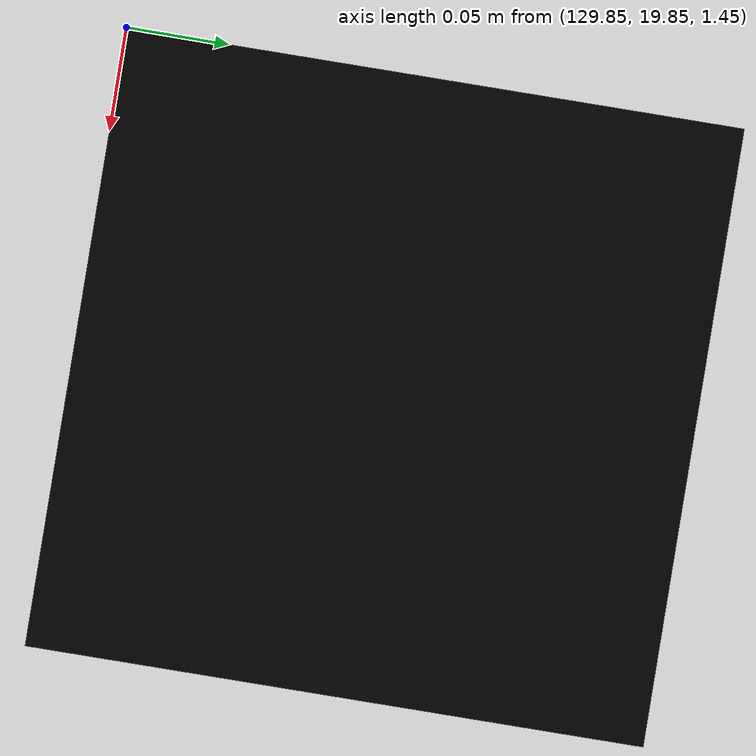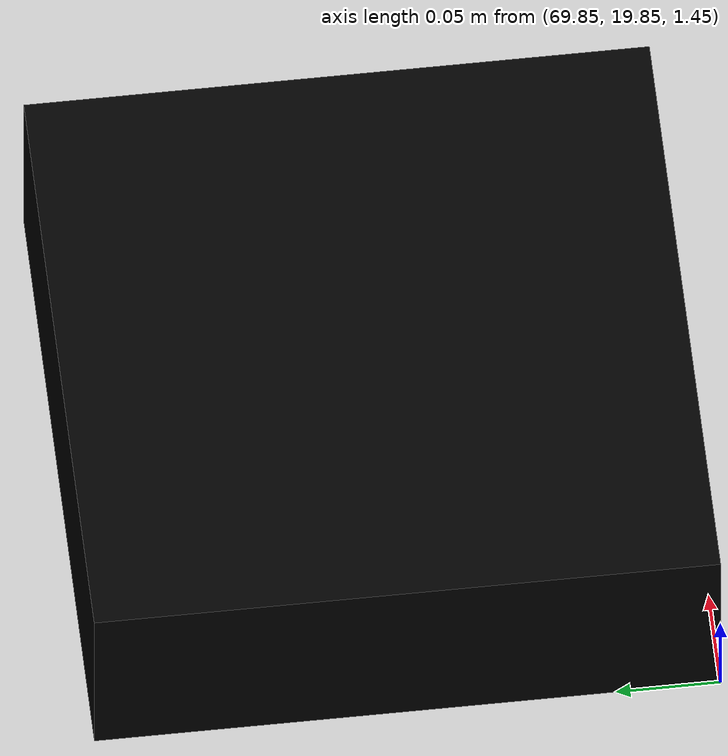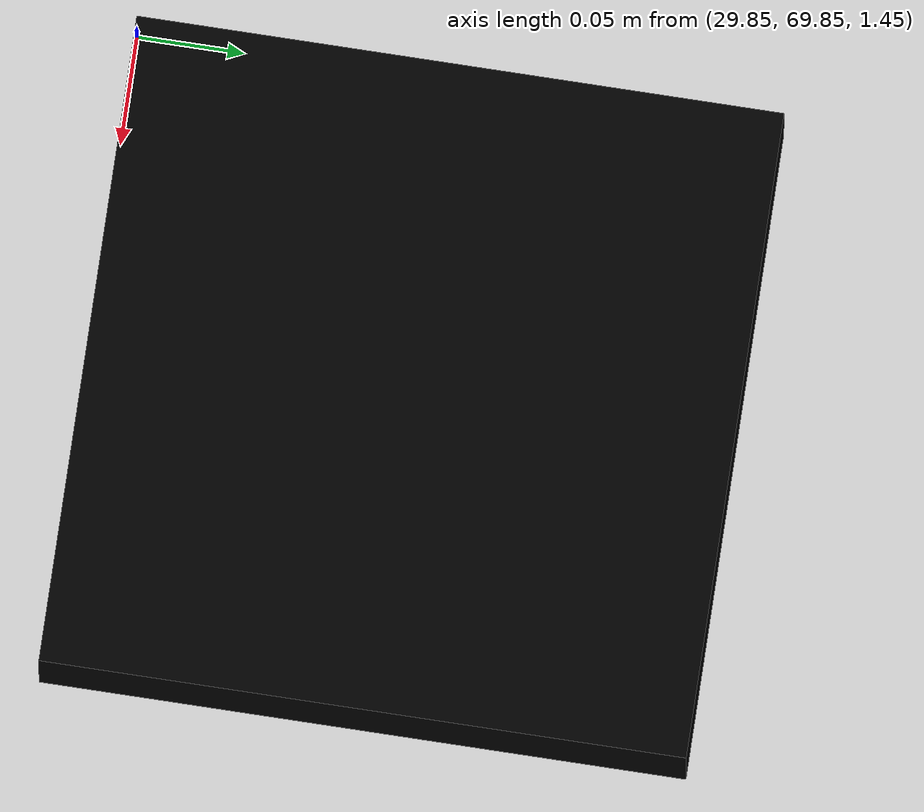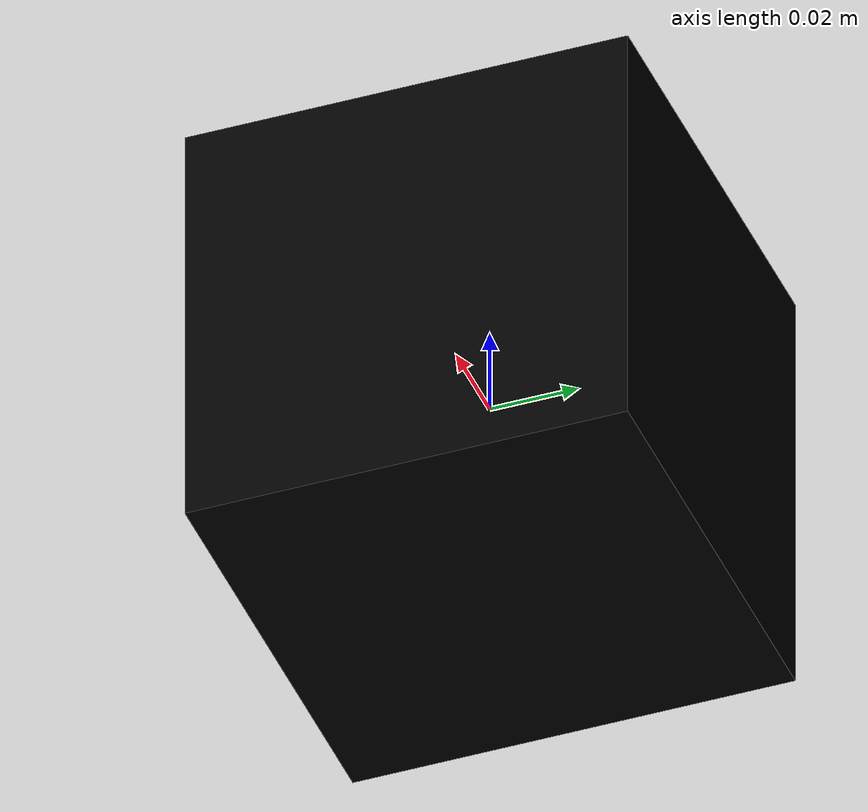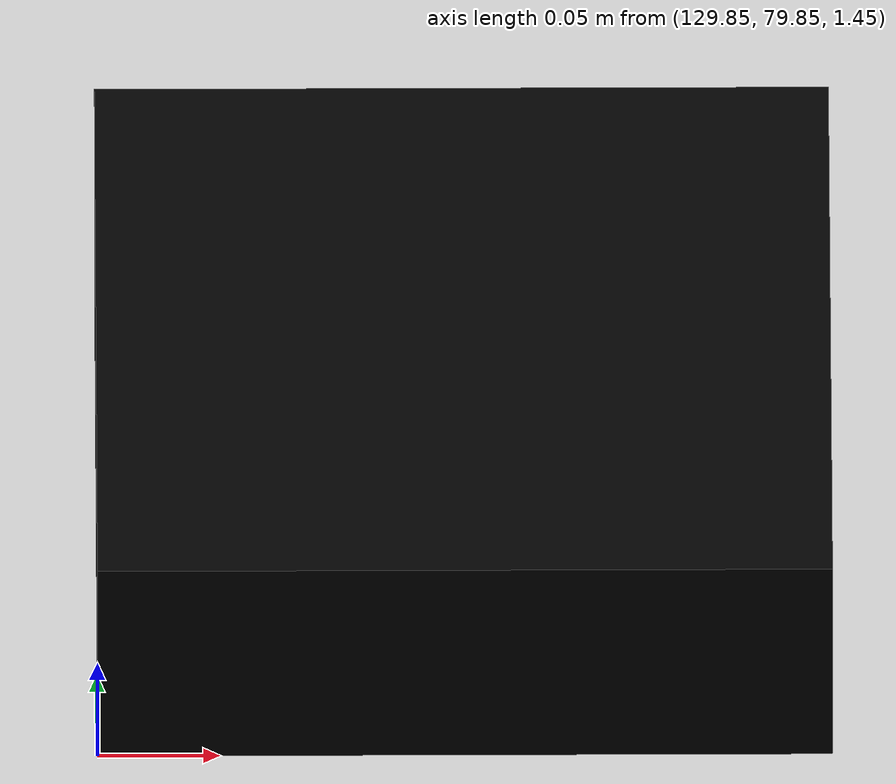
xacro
<?xml version="1.0"?>
<robot name="arts" xmlns:xacro="http://www.ros.org/wiki/xacro">

<xacro:include filename="arts.xacro" />

<link name="arts_base">
    <visual>
        <origin xyz="0 0 0" rpy="0 0 0"/>
        <geometry>
            <box size="0.1 0.1 0.1"/>
        </geometry>
        <material name="transparent">
            <color rgba="0 0 0 0"/>
        </material>
    </visual>
</link>

<!--node 1-->
<xacro:arts_node suffix="3" x="30" y="20" z="1.5" base_frame="arts_base"/>
<!--node 2-->
<xacro:arts_node suffix="4" x="70" y="20" z="1.5" base_frame="arts_base"/>
<!--node 3-->
<xacro:arts_node suffix="5" x="130" y="20" z="1.5" base_frame="arts_base"/>
<!--node 4-->
<xacro:arts_node suffix="6" x="130" y="80" z="1.5" base_frame="arts_base"/>
<!--node 5-->
<xacro:arts_node suffix="7" x="30" y="70" z="1.5" base_frame="arts_base"/>
</robot>

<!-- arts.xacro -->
<robot xmlns:xacro="http://ros.org/wiki/xacro">
	<xacro:macro name="arts_node" params="suffix x y z base_frame rr:=0 rp:=0 ry:=0">
	    <link name="arts_node_${suffix}">
		<visual>
		    <geometry>
			<box size="0.3 0.3 0.1"/>
		    </geometry>
		    <material name="black">
			<color rgba="0 0 0 1"/>
		    </material>
		</visual>
		<collision>
		    <geometry>
			<!-- Actual sizes: H=18cm (base)+13.8cm (antenna), W=23.6cm, depth = 3.5cm -->
			<box size="0.3 0.3 0.1"/>
		    </geometry>
		</collision>
	    </link>
	    <joint name="arts_node_${suffix}_location" type="fixed">
		<parent link="${base_frame}"/>
		<child link="arts_node_${suffix}"/>
		<origin xyz="${x} ${y} ${z}" rpy="${rr} ${rp} ${ry}" />
	    </joint>
	</xacro:macro>
</robot>
